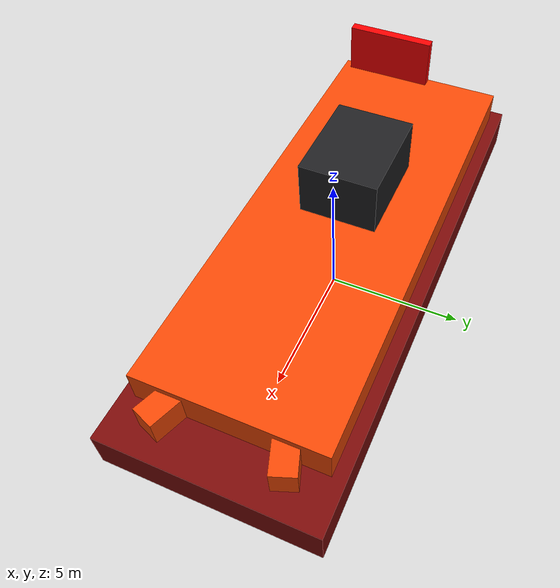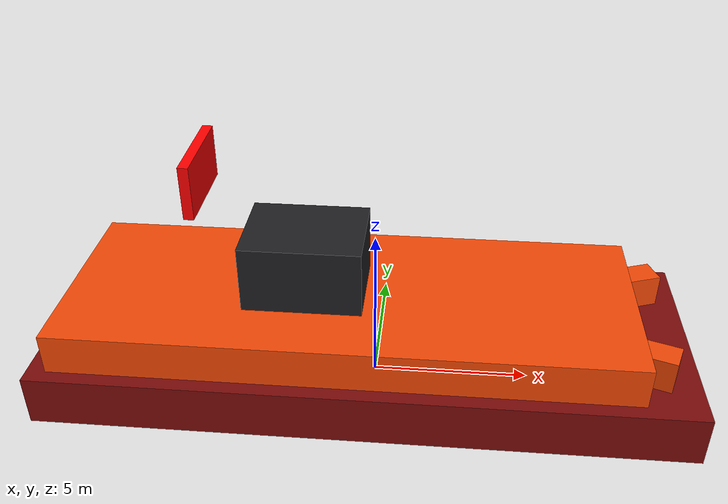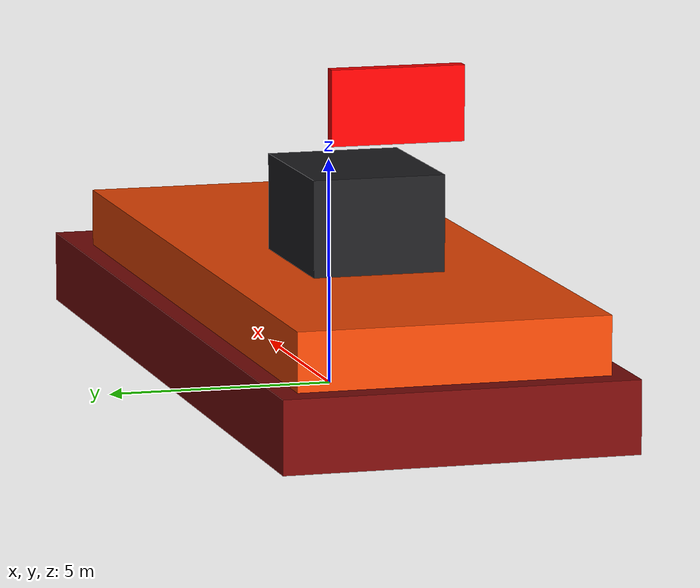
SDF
<?xml version='1.0' encoding='utf-8'?>
<sdf version="1.10">
  <model name="cooperative_enemy_04_boat">
    <pose>0 0 1.755 0 0 0</pose>
    <link name="hull">
      <inertial>
        <mass>5338.71</mass>
        <inertia>
          <ixx>31578.46965</ixx>
          <iyy>67668.14925</iyy>
          <izz>76690.56915</izz>
          <ixy>0</ixy>
          <ixz>0</ixz>
          <iyz>0</iyz>
        </inertia>
      </inertial>
      <collision name="hull_collision">
        <geometry>
          <box>
            <size>16.38 6.63 2.145</size>
          </box>
        </geometry>
      </collision>
      <visual name="lower_hull">
        <pose>-0.195 0 -0.702 0 0 0</pose>
        <geometry>
          <box>
            <size>20.124 7.722 1.5912</size>
          </box>
        </geometry>
        <material>
          <ambient>0.18 0.015 0.015 1</ambient>
          <diffuse>0.48 0.04 0.035 1</diffuse>
          <specular>0.18 0.08 0.08 1</specular>
        </material>
      </visual>
      <visual name="upper_hull">
        <pose>-0.78 0 0.39 0 0 0</pose>
        <geometry>
          <box>
            <size>17.784 6.786 1.9656</size>
          </box>
        </geometry>
        <material>
          <ambient>0.38 0.10 0.01 1</ambient>
          <diffuse>0.95 0.28 0.02 1</diffuse>
          <specular>0.22 0.08 0.08 1</specular>
        </material>
      </visual>
      <visual name="bow_left">
        <pose>7.215 1.638 0.312 0 0 0.35</pose>
        <geometry>
          <box>
            <size>3.9 0.858 1.638</size>
          </box>
        </geometry>
        <material>
          <ambient>0.38 0.10 0.01 1</ambient>
          <diffuse>0.95 0.28 0.02 1</diffuse>
        </material>
      </visual>
      <visual name="bow_right">
        <pose>7.215 -1.638 0.312 0 0 -0.35</pose>
        <geometry>
          <box>
            <size>3.9 0.858 1.638</size>
          </box>
        </geometry>
        <material>
          <ambient>0.38 0.10 0.01 1</ambient>
          <diffuse>0.95 0.28 0.02 1</diffuse>
        </material>
      </visual>
      <visual name="cabin">
        <pose>-2.145 0 2.418 0 0 0</pose>
        <geometry>
          <box>
            <size>3.705 2.925 2.145</size>
          </box>
        </geometry>
        <material>
          <ambient>0.05 0.05 0.055 1</ambient>
          <diffuse>0.12 0.12 0.13 1</diffuse>
        </material>
      </visual>
      <visual name="enemy_flag">
        <pose>-5.265 0 5.265 0 0 0</pose>
        <geometry>
          <box>
            <size>0.312 2.925 1.638</size>
          </box>
        </geometry>
        <material>
          <ambient>0.70 0 0 1</ambient>
          <diffuse>1 0 0 1</diffuse>
        </material>
      </visual>
    </link>
    <plugin filename="gz-sim-velocity-control-system" name="gz::sim::systems::VelocityControl">
      <topic>/model/enemy_04/cmd_vel</topic>
      <control_linear_velocity>true</control_linear_velocity>
      <control_angular_velocity>true</control_angular_velocity>
    </plugin>
    <plugin filename="libBoatWaveFollower.so" name="gz::sim::systems::BoatWaveFollower">
      <mean_z>1.95</mean_z>
      <heave_amplitude>0.351</heave_amplitude>
      <roll_amplitude>0.045</roll_amplitude>
      <pitch_amplitude>0.04</pitch_amplitude>
      <primary_frequency>1.15</primary_frequency>
      <secondary_frequency>1.65</secondary_frequency>
      <wave_number_x>0.34</wave_number_x>
      <wave_number_y>0.23</wave_number_y>
    </plugin>
  </model>
</sdf>
